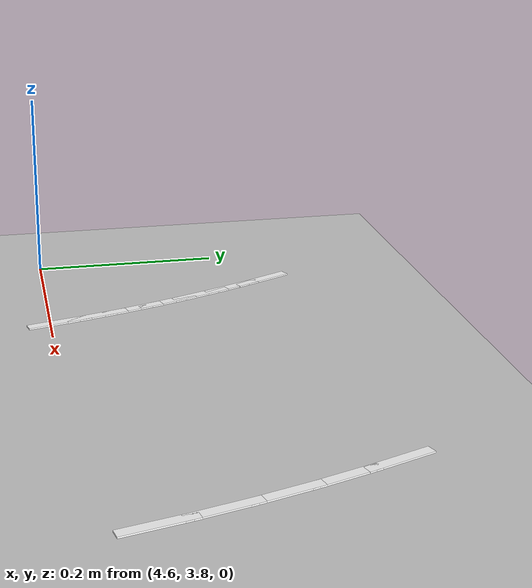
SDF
<sdf version="1.7">
 <world name="default">
  <model name="ground_plane">
   <static>1</static>
   <link name="link">
    <collision name="collision">
     <geometry><plane><normal>0 0 1</normal><size>100 100</size></plane></geometry>
     <surface>
      <contact><collide_bitmask>65535</collide_bitmask></contact>
      <friction><ode><mu>100</mu><mu2>50</mu2></ode></friction>
     </surface>
    </collision>
    <visual name="visual">
     <cast_shadows>0</cast_shadows>
     <geometry><plane><normal>0 0 1</normal><size>100 100</size></plane></geometry>
     <material>
      <script><uri>file://media/materials/scripts/gazebo.material</uri><name>Gazebo/Grey</name></script>
     </material>
    </visual>
   </link>
  </model>
  <model name="lane_line_right_156">
   <static>1</static>
   <link name="link">
    <pose>0 0 -0.004 0 -0 0</pose>
    <visual name="visual">
     <geometry><box><size>0.0681 0.01 0.01</size></box></geometry>
     <material><ambient>1 1 1 1</ambient><diffuse>1 1 1 1</diffuse></material>
    </visual>
    <collision name="collision"><geometry><box><size>0.0681 0.01 0.01</size></box></geometry></collision>
   </link>
   <pose>5.16304 3.85163 0 0 -0 1.77917</pose>
  </model>
  <model name="lane_line_left_157">
   <static>1</static>
   <link name="link">
    <pose>0 0 -0.004 0 -0 0</pose>
    <visual name="visual">
     <geometry><box><size>0.0681 0.01 0.01</size></box></geometry>
     <material><ambient>1 1 1 1</ambient><diffuse>1 1 1 1</diffuse></material>
    </visual>
    <collision name="collision"><geometry><box><size>0.0681 0.01 0.01</size></box></geometry></collision>
   </link>
   <pose>4.76242 3.80951 0 0 -0 1.81122</pose>
  </model>
  <model name="lane_line_right_157">
   <static>1</static>
   <link name="link">
    <pose>0 0 -0.004 0 -0 0</pose>
    <visual name="visual">
     <geometry><box><size>0.0681 0.01 0.01</size></box></geometry>
     <material><ambient>1 1 1 1</ambient><diffuse>1 1 1 1</diffuse></material>
    </visual>
    <collision name="collision"><geometry><box><size>0.0681 0.01 0.01</size></box></geometry></collision>
   </link>
   <pose>5.15091 3.90476 0 0 -0 1.81122</pose>
  </model>
  <model name="lane_line_left_158">
   <static>1</static>
   <link name="link">
    <pose>0 0 -0.004 0 -0 0</pose>
    <visual name="visual">
     <geometry><box><size>0.0681 0.01 0.01</size></box></geometry>
     <material><ambient>1 1 1 1</ambient><diffuse>1 1 1 1</diffuse></material>
    </visual>
    <collision name="collision"><geometry><box><size>0.0681 0.01 0.01</size></box></geometry></collision>
   </link>
   <pose>4.75185 3.84981 0 0 -0 1.84328</pose>
  </model>
  <model name="lane_line_right_158">
   <static>1</static>
   <link name="link">
    <pose>0 0 -0.004 0 -0 0</pose>
    <visual name="visual">
     <geometry><box><size>0.0681 0.01 0.01</size></box></geometry>
     <material><ambient>1 1 1 1</ambient><diffuse>1 1 1 1</diffuse></material>
    </visual>
    <collision name="collision"><geometry><box><size>0.0681 0.01 0.01</size></box></geometry></collision>
   </link>
   <pose>5.13709 3.95746 0 0 -0 1.84328</pose>
  </model>
  <model name="lane_line_left_159">
   <static>1</static>
   <link name="link">
    <pose>0 0 -0.004 0 -0 0</pose>
    <visual name="visual">
     <geometry><box><size>0.0681 0.01 0.01</size></box></geometry>
     <material><ambient>1 1 1 1</ambient><diffuse>1 1 1 1</diffuse></material>
    </visual>
    <collision name="collision"><geometry><box><size>0.0681 0.01 0.01</size></box></geometry></collision>
   </link>
   <pose>4.74 3.88976 0 0 -0 1.87534</pose>
  </model>
  <model name="lane_line_right_159">
   <static>1</static>
   <link name="link">
    <pose>0 0 -0.004 0 -0 0</pose>
    <visual name="visual">
     <geometry><box><size>0.0681 0.01 0.01</size></box></geometry>
     <material><ambient>1 1 1 1</ambient><diffuse>1 1 1 1</diffuse></material>
    </visual>
    <collision name="collision"><geometry><box><size>0.0681 0.01 0.01</size></box></geometry></collision>
   </link>
   <pose>5.12159 4.0097 0 0 -0 1.87534</pose>
  </model>
  <model name="lane_line_left_160">
   <static>1</static>
   <link name="link">
    <pose>0 0 -0.004 0 -0 0</pose>
    <visual name="visual">
     <geometry><box><size>0.0681 0.01 0.01</size></box></geometry>
     <material><ambient>1 1 1 1</ambient><diffuse>1 1 1 1</diffuse></material>
    </visual>
    <collision name="collision"><geometry><box><size>0.0681 0.01 0.01</size></box></geometry></collision>
   </link>
   <pose>4.72687 3.9293 0 0 -0 1.9074</pose>
  </model>
  <model name="lane_line_right_160">
   <static>1</static>
   <link name="link">
    <pose>0 0 -0.004 0 -0 0</pose>
    <visual name="visual">
     <geometry><box><size>0.0681 0.01 0.01</size></box></geometry>
     <material><ambient>1 1 1 1</ambient><diffuse>1 1 1 1</diffuse></material>
    </visual>
    <collision name="collision"><geometry><box><size>0.0681 0.01 0.01</size></box></geometry></collision>
   </link>
   <pose>5.10442 4.06141 0 0 -0 1.9074</pose>
  </model>
  <model name="lane_line_left_161">
   <static>1</static>
   <link name="link">
    <pose>0 0 -0.004 0 -0 0</pose>
    <visual name="visual">
     <geometry><box><size>0.0681 0.01 0.01</size></box></geometry>
     <material><ambient>1 1 1 1</ambient><diffuse>1 1 1 1</diffuse></material>
    </visual>
    <collision name="collision"><geometry><box><size>0.0681 0.01 0.01</size></box></geometry></collision>
   </link>
   <pose>4.71248 3.9684 0 0 -0 1.93945</pose>
  </model>
  <model name="lane_line_left_162">
   <static>1</static>
   <link name="link">
    <pose>0 0 -0.004 0 -0 0</pose>
    <visual name="visual">
     <geometry><box><size>0.0681 0.01 0.01</size></box></geometry>
     <material><ambient>1 1 1 1</ambient><diffuse>1 1 1 1</diffuse></material>
    </visual>
    <collision name="collision"><geometry><box><size>0.0681 0.01 0.01</size></box></geometry></collision>
   </link>
   <pose>4.69684 4.00702 0 0 -0 1.97151</pose>
  </model>
  <model name="lane_line_left_163">
   <static>1</static>
   <link name="link">
    <pose>0 0 -0.004 0 -0 0</pose>
    <visual name="visual">
     <geometry><box><size>0.0681 0.01 0.01</size></box></geometry>
     <material><ambient>1 1 1 1</ambient><diffuse>1 1 1 1</diffuse></material>
    </visual>
    <collision name="collision"><geometry><box><size>0.0681 0.01 0.01</size></box></geometry></collision>
   </link>
   <pose>4.67997 4.04512 0 0 -0 2.00357</pose>
  </model>
 </world>
</sdf>
